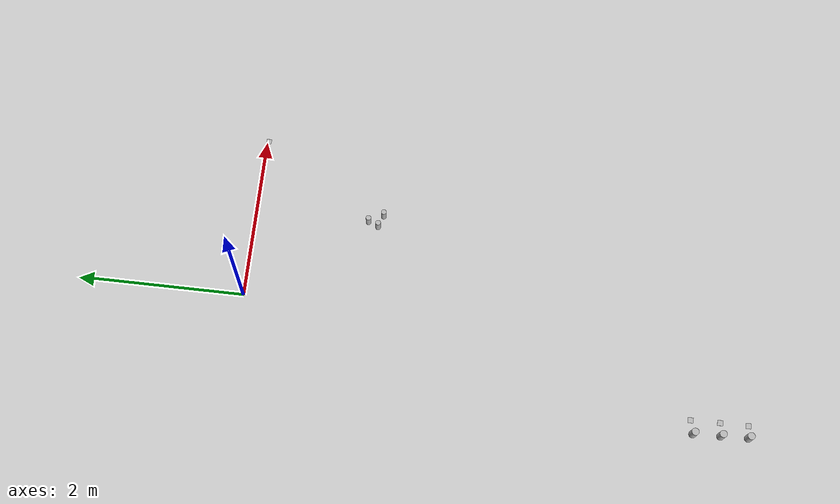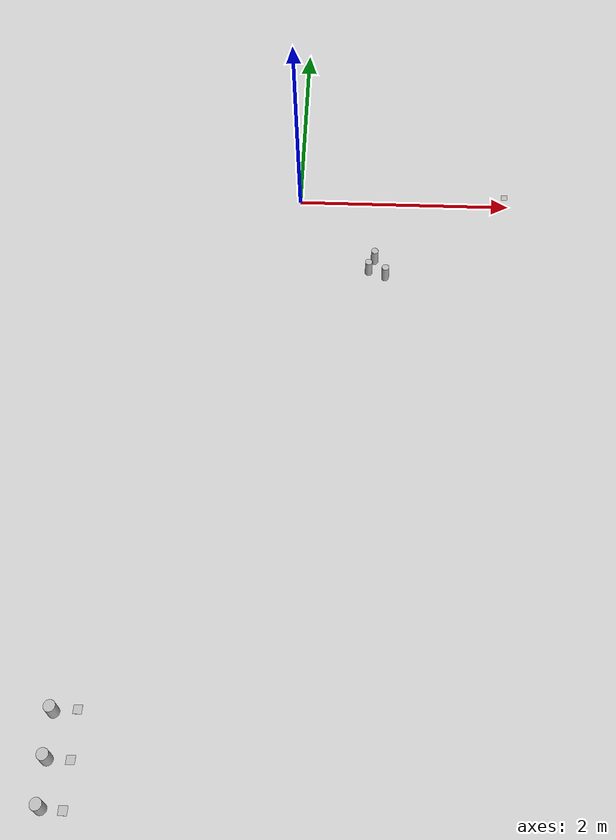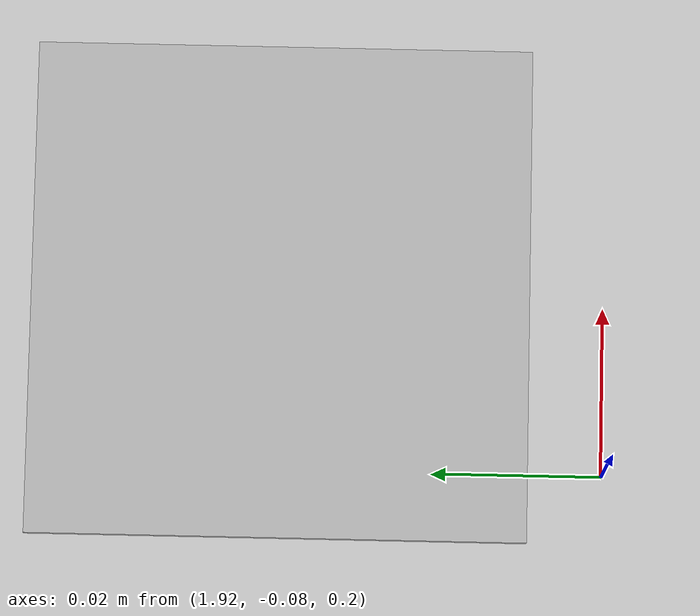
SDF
<sdf version="1.7">
 <world name="default">
  <plugin name="gazebo_ros_state" filename="libgazebo_ros_state.so">
   <ros><namespace>/gazebo</namespace></ros>
   <update_rate>1.0</update_rate>
  </plugin>
  <light name="sun" type="directional">
   <pose>0 0 10 0 -0 0</pose>
   <diffuse>0.8 0.8 0.8 1</diffuse>
   <specular>0.2 0.2 0.2 1</specular>
   <attenuation>
    <range>1000</range>
    <constant>0.9</constant>
    <linear>0.01</linear>
    <quadratic>0.001</quadratic>
   </attenuation>
   <direction>0 0.5 -0.9</direction>
   <spot><inner_angle>0</inner_angle><outer_angle>0</outer_angle><falloff>0</falloff></spot>
  </light>
  <light name="point_light" type="point">
   <pose>0 -0.377195 6.59868 0 -0 0</pose>
   <diffuse>0.784314 0.784314 0.784314 1</diffuse>
   <specular>0.0980392 0.0980392 0.0980392 1</specular>
   <attenuation>
    <range>50</range>
    <constant>0.8</constant>
    <linear>0</linear>
    <quadratic>0.001</quadratic>
   </attenuation>
   <cast_shadows>0</cast_shadows>
   <direction>0 0 -1</direction>
   <spot><inner_angle>0</inner_angle><outer_angle>0</outer_angle><falloff>0</falloff></spot>
  </light>
  <model name="ground_plane">
   <static>1</static>
   <link name="link">
    <collision name="collision">
     <geometry><plane><normal>0 0 1</normal><size>100 100</size></plane></geometry>
     <surface>
      <contact><collide_bitmask>65535</collide_bitmask></contact>
      <friction><ode><mu>100</mu><mu2>50</mu2></ode></friction>
     </surface>
    </collision>
    <visual name="visual">
     <cast_shadows>0</cast_shadows>
     <geometry><plane><normal>0 0 1</normal><size>100 100</size></plane></geometry>
     <material>
      <script><uri>file://media/materials/scripts/gazebo.material</uri><name>Gazebo/Grey</name></script>
     </material>
    </visual>
   </link>
  </model>
  <gravity>0 0 -9.8</gravity>
  <magnetic_field>6e-06 2.3e-05 -4.2e-05</magnetic_field>
  <atmosphere type="adiabatic"/>
  <physics type="ode">
   <max_step_size>0.001</max_step_size>
   <real_time_factor>1</real_time_factor>
   <real_time_update_rate>1000</real_time_update_rate>
  </physics>
  <scene><ambient>0.4 0.4 0.4 1</ambient><background>0.7 0.7 0.7 1</background><shadows>1</shadows></scene>
  <audio><device>default</device></audio>
  <spherical_coordinates>
   <surface_model>EARTH_WGS84</surface_model>
   <latitude_deg>0</latitude_deg>
   <longitude_deg>0</longitude_deg>
   <elevation>0</elevation>
   <heading_deg>0</heading_deg>
  </spherical_coordinates>
  <model name="biscuits_pack">
   <static>0</static>
   <link name="link">
    <inertial>
     <mass>0.25</mass>
     <inertia><ixx>0</ixx><ixy>0</ixy><ixz>0</ixz><iyy>0</iyy><iyz>0</iyz><izz>0</izz></inertia>
    </inertial>
    <collision name="collision">
     <geometry><cylinder><radius>0.029</radius><length>0.15</length></cylinder></geometry>
    </collision>
    <visual name="visual">
     <geometry><cylinder><radius>0.029</radius><length>0.15</length></cylinder></geometry>
     <material>
      <script>
       <uri>model://biscuits_pack/material/scripts</uri>
       <uri>model://biscuits_pack/material/textures</uri>
       <name>Custom/biscuits_pack</name>
      </script>
     </material>
    </visual>
    <velocity_decay><linear>0</linear><angular>0</angular></velocity_decay>
   </link>
   <pose>0.809182 -1.58808 1.05001 -0.000148 -6.7e-05 0.00048</pose>
  </model>
  <model name="biscuits_pack_0">
   <static>0</static>
   <link name="link">
    <inertial>
     <mass>0.25</mass>
     <inertia><ixx>0</ixx><ixy>0</ixy><ixz>0</ixz><iyy>0</iyy><iyz>0</iyz><izz>0</izz></inertia>
    </inertial>
    <collision name="collision">
     <geometry><cylinder><radius>0.029</radius><length>0.15</length></cylinder></geometry>
    </collision>
    <visual name="visual">
     <geometry><cylinder><radius>0.029</radius><length>0.15</length></cylinder></geometry>
     <material>
      <script>
       <uri>model://biscuits_pack/material/scripts</uri>
       <uri>model://biscuits_pack/material/textures</uri>
       <name>Custom/biscuits_pack</name>
      </script>
     </material>
    </visual>
    <velocity_decay><linear>0</linear><angular>0</angular></velocity_decay>
   </link>
   <pose>0.719953 -1.42332 1.05 -0.000142 0.000189 -0.000112</pose>
  </model>
  <model name="biscuits_pack_1">
   <static>0</static>
   <link name="link">
    <inertial>
     <mass>0.25</mass>
     <inertia><ixx>0</ixx><ixy>0</ixy><ixz>0</ixz><iyy>0</iyy><iyz>0</iyz><izz>0</izz></inertia>
    </inertial>
    <collision name="collision">
     <geometry><cylinder><radius>0.029</radius><length>0.15</length></cylinder></geometry>
    </collision>
    <visual name="visual">
     <geometry><cylinder><radius>0.029</radius><length>0.15</length></cylinder></geometry>
     <material>
      <script>
       <uri>model://biscuits_pack/material/scripts</uri>
       <uri>model://biscuits_pack/material/textures</uri>
       <name>Custom/biscuits_pack</name>
      </script>
     </material>
    </visual>
    <velocity_decay><linear>0</linear><angular>0</angular></velocity_decay>
   </link>
   <pose>0.673582 -1.53787 1.05 -0.000317 0.000319 -9.5e-05</pose>
  </model>
  <model name="cocacola">
   <static>0</static>
   <link name="link">
    <inertial>
     <mass>0.25</mass>
     <inertia><ixx>0</ixx><ixy>0</ixy><ixz>0</ixz><iyy>0</iyy><iyz>0</iyz><izz>0</izz></inertia>
    </inertial>
    <collision name="collision">
     <pose>0 0 0.075 -3.14159 -0 0</pose>
     <geometry><cylinder><radius>0.04</radius><length>0.15</length></cylinder></geometry>
    </collision>
    <visual name="visual">
     <pose>0 0 0.075 -3.14159 -0 0</pose>
     <geometry><cylinder><radius>0.04</radius><length>0.15</length></cylinder></geometry>
     <material>
      <script>
       <uri>model://cocacola/material/scripts</uri>
       <uri>model://cocacola/material/textures</uri>
       <name>Custom/cocacola</name>
      </script>
     </material>
    </visual>
    <velocity_decay><linear>0</linear><angular>0</angular></velocity_decay>
   </link>
   <pose>-1.30821 -5.15756 0.975001 9e-06 4.5e-05 -3.3e-05</pose>
  </model>
  <model name="cocacola_0">
   <static>0</static>
   <link name="link">
    <inertial>
     <mass>0.25</mass>
     <inertia><ixx>0</ixx><ixy>0</ixy><ixz>0</ixz><iyy>0</iyy><iyz>0</iyz><izz>0</izz></inertia>
    </inertial>
    <collision name="collision">
     <pose>0 0 0.075 -3.14159 -0 0</pose>
     <geometry><cylinder><radius>0.04</radius><length>0.15</length></cylinder></geometry>
    </collision>
    <visual name="visual">
     <pose>0 0 0.075 -3.14159 -0 0</pose>
     <geometry><cylinder><radius>0.04</radius><length>0.15</length></cylinder></geometry>
     <material>
      <script>
       <uri>model://cocacola/material/scripts</uri>
       <uri>model://cocacola/material/textures</uri>
       <name>Custom/cocacola</name>
      </script>
     </material>
    </visual>
    <velocity_decay><linear>0</linear><angular>0</angular></velocity_decay>
   </link>
   <pose>-1.29951 -5.45549 0.975 0.000179 -0.000156 -4e-06</pose>
  </model>
  <model name="cocacola_1">
   <static>0</static>
   <link name="link">
    <inertial>
     <mass>0.25</mass>
     <inertia><ixx>0</ixx><ixy>0</ixy><ixz>0</ixz><iyy>0</iyy><iyz>0</iyz><izz>0</izz></inertia>
    </inertial>
    <collision name="collision">
     <pose>0 0 0.075 -3.14159 -0 0</pose>
     <geometry><cylinder><radius>0.04</radius><length>0.15</length></cylinder></geometry>
    </collision>
    <visual name="visual">
     <pose>0 0 0.075 -3.14159 -0 0</pose>
     <geometry><cylinder><radius>0.04</radius><length>0.15</length></cylinder></geometry>
     <material>
      <script>
       <uri>model://cocacola/material/scripts</uri>
       <uri>model://cocacola/material/textures</uri>
       <name>Custom/cocacola</name>
      </script>
     </material>
    </visual>
    <velocity_decay><linear>0</linear><angular>0</angular></velocity_decay>
   </link>
   <pose>-1.2888 -5.75127 0.975002 0.000276 9.6e-05 -1.3e-05</pose>
  </model>
  <model name="aruco_marker_250_6x6_1">
   <static>0</static>
   <link name="marker">
    <inertial>
     <mass>0.1</mass>
     <inertia><ixx>0</ixx><ixy>0</ixy><ixz>0</ixz><iyy>0</iyy><iyz>0</iyz><izz>0</izz></inertia>
    </inertial>
    <visual name="visual">
     <pose>0 0 0 0 -0 1.57</pose>
     <geometry><box><size>0.06 0.06 0.001</size></box></geometry>
     <material>
      <script>
       <uri>model://aruco_marker_250_6x6_1/material/scripts</uri>
       <uri>model://aruco_marker_250_6x6_1/material/textures</uri>
       <name>Aruco/aruco_marker_250_6x6_1</name>
      </script>
     </material>
    </visual>
    <collision name="collision"><geometry><box><size>0.06 0.06 0.001</size></box></geometry></collision>
    <self_collide>1</self_collide>
   </link>
   <pose>-1.15553 -5.13494 0.975501 -1e-05 6e-06 6e-06</pose>
  </model>
  <model name="aruco_marker_250_6x6_2">
   <static>0</static>
   <link name="marker">
    <inertial>
     <mass>0.1</mass>
     <inertia><ixx>0</ixx><ixy>0</ixy><ixz>0</ixz><iyy>0</iyy><iyz>0</iyz><izz>0</izz></inertia>
    </inertial>
    <visual name="visual">
     <pose>0 0 0 0 -0 1.57</pose>
     <geometry><box><size>0.06 0.06 0.001</size></box></geometry>
     <material>
      <script>
       <uri>model://aruco_marker_250_6x6_2/material/scripts</uri>
       <uri>model://aruco_marker_250_6x6_2/material/textures</uri>
       <name>Aruco/aruco_marker_250_6x6_2</name>
      </script>
     </material>
    </visual>
    <collision name="collision"><geometry><box><size>0.06 0.06 0.001</size></box></geometry></collision>
    <self_collide>1</self_collide>
   </link>
   <pose>-1.15017 -5.45186 0.9755 3e-06 -1e-06 0</pose>
  </model>
  <model name="aruco_marker_250_6x6_3">
   <static>0</static>
   <link name="marker">
    <inertial>
     <mass>0.1</mass>
     <inertia><ixx>0</ixx><ixy>0</ixy><ixz>0</ixz><iyy>0</iyy><iyz>0</iyz><izz>0</izz></inertia>
    </inertial>
    <visual name="visual">
     <pose>0 0 0 0 -0 1.57</pose>
     <geometry><box><size>0.06 0.06 0.001</size></box></geometry>
     <material>
      <script>
       <uri>model://aruco_marker_250_6x6_3/material/scripts</uri>
       <uri>model://aruco_marker_250_6x6_3/material/textures</uri>
       <name>Aruco/aruco_marker_250_6x6_3</name>
      </script>
     </material>
    </visual>
    <collision name="collision"><geometry><box><size>0.06 0.06 0.001</size></box></geometry></collision>
    <self_collide>1</self_collide>
   </link>
   <pose>-1.14928 -5.75668 0.9755 2e-06 3e-06 0</pose>
  </model>
  <model name="aruco_marker_250_6x6_4">
   <static>0</static>
   <link name="marker">
    <inertial>
     <mass>0.1</mass>
     <inertia><ixx>0</ixx><ixy>0</ixy><ixz>0</ixz><iyy>0</iyy><iyz>0</iyz><izz>0</izz></inertia>
    </inertial>
    <visual name="visual">
     <pose>0 0 0 0 -0 1.57</pose>
     <geometry><box><size>0.06 0.06 0.001</size></box></geometry>
     <material>
      <script>
       <uri>model://aruco_marker_250_6x6_4/material/scripts</uri>
       <uri>model://aruco_marker_250_6x6_4/material/textures</uri>
       <name>Aruco/aruco_marker_250_6x6_4</name>
      </script>
     </material>
    </visual>
    <collision name="collision"><geometry><box><size>0.06 0.06 0.001</size></box></geometry></collision>
    <self_collide>1</self_collide>
   </link>
   <pose>1.943163 -0.041801 0.190803 -0.000877 0.005412 3.5e-05</pose>
  </model>
 </world>
</sdf>
